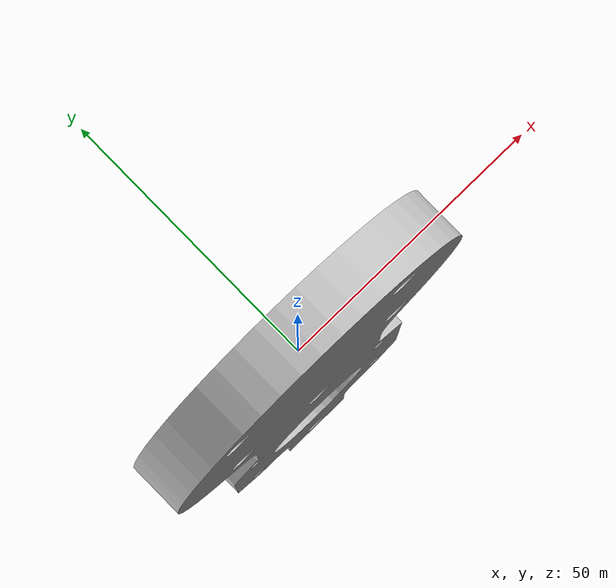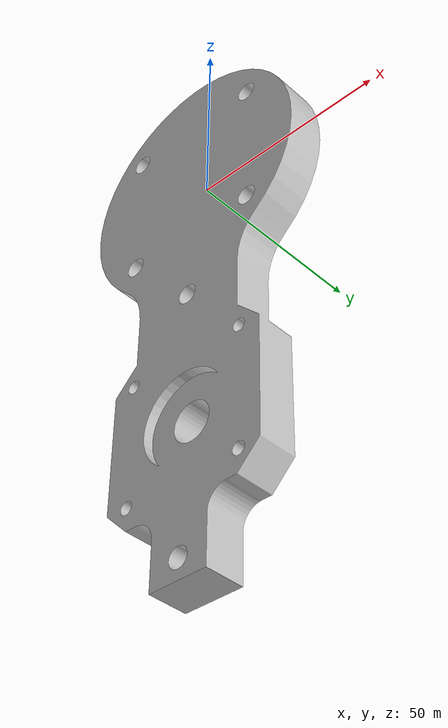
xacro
<?xml version="1.0" encoding="utf-8"?>
<robot
  name="gripper">
  <link
    name="base_link">
    <inertial>
      <origin
        xyz="-0.0343602388115351 -0.0135600432262813 -0.0121827005861681"
        rpy="0 0 0" />
      <mass
        value="0.150138292938201" />
      <inertia
        ixx="4.28065249904876E-05"
        ixy="2.7889980867191E-06"
        ixz="-9.95773981317376E-08"
        iyy="7.08193033845564E-05"
        iyz="1.64675674139304E-07"
        izz="9.7851511243247E-05" />
    </inertial>
    <visual>
      <origin
        xyz="0 0 0"
        rpy="0 0 0" />
      <geometry>
        <mesh
          filename="package://gripper_description/meshes/base_link.STL" />
      </geometry>
      <material
        name="">
        <color
          rgba="0.752941176470588 0.752941176470588 0.752941176470588 1" />
      </material>
    </visual>
    <collision>
      <origin
        xyz="0 0 0"
        rpy="0 0 0" />
      <geometry>
        <mesh
          filename="package://gripper_description/meshes/base_link.STL" />
      </geometry>
    </collision>
  </link>
  <link
    name="Empty_Link">
    <inertial>
      <origin
        xyz="0.0373154854307915 1.91767601864411E-09 -0.0227872043702891"
        rpy="0 0 0" />
      <mass
        value="0.00198317535499014" />
      <inertia
        ixx="1.81629650443448E-07"
        ixy="1.51929127721058E-15"
        ixz="-7.77363284072925E-09"
        iyy="1.80738094620205E-07"
        iyz="1.22029525686304E-14"
        izz="1.99456478280482E-08" />
    </inertial>
    <visual>
      <origin
        xyz="0 0 0"
        rpy="0 0 0" />
      <geometry>
        <mesh
          filename="package://gripper_description/meshes/Empty_Link.STL" />
      </geometry>
      <material
        name="">
        <color
          rgba="1 1 1 1" />
      </material>
    </visual>
    <collision>
      <origin
        xyz="0 0 0"
        rpy="0 0 0" />
      <geometry>
        <mesh
          filename="package://gripper_description/meshes/Empty_Link.STL" />
      </geometry>
    </collision>
  </link>
  <joint
    name="jz_joint"
    type="fixed">
    <origin
      xyz="0 0 0"
      rpy="0 0 0" />
    <parent
      link="base_link" />
    <child
      link="Empty_Link" />
    <axis
      xyz="0 0 0" />
  </joint>
</robot>
